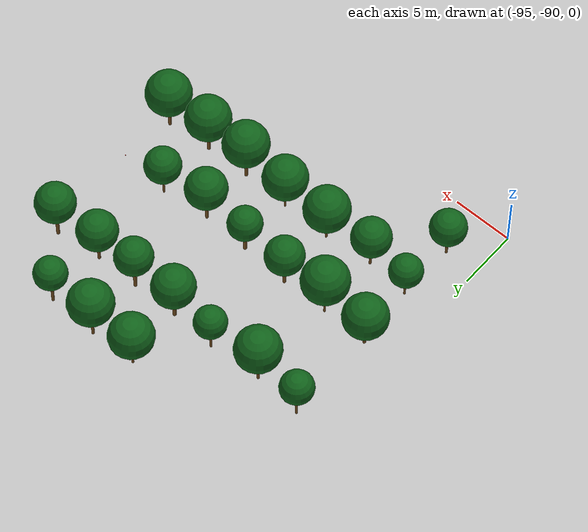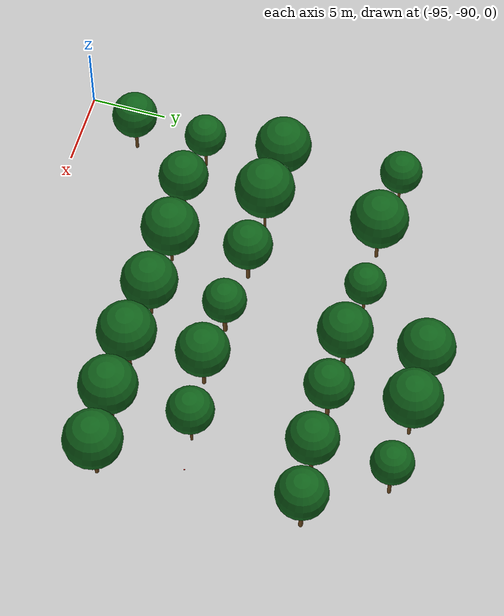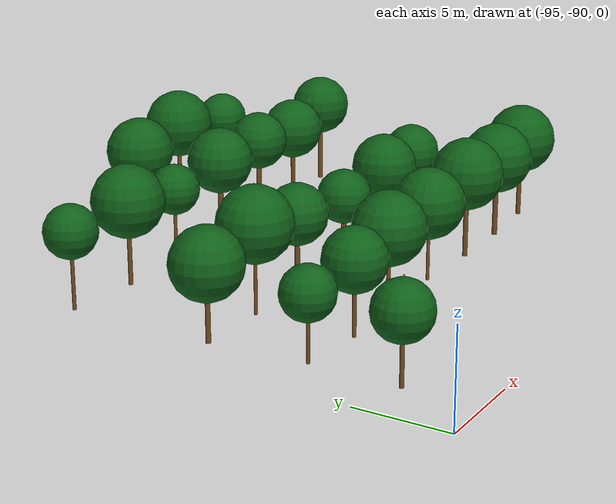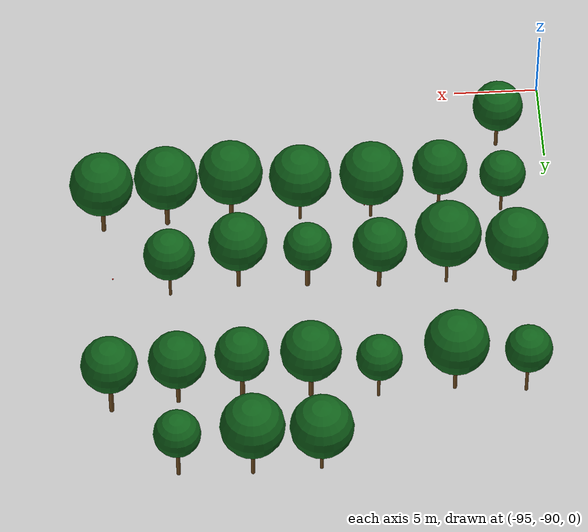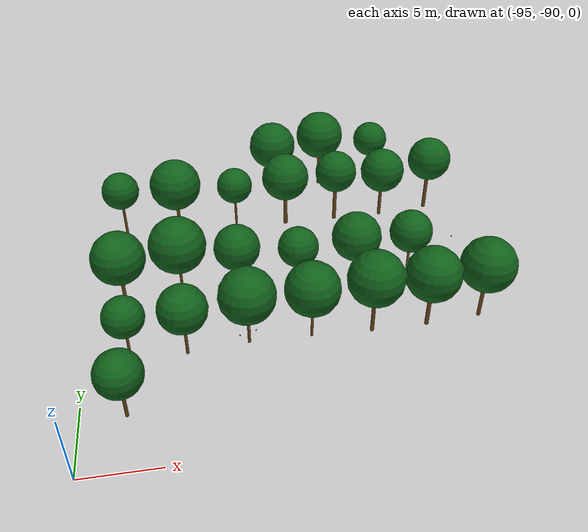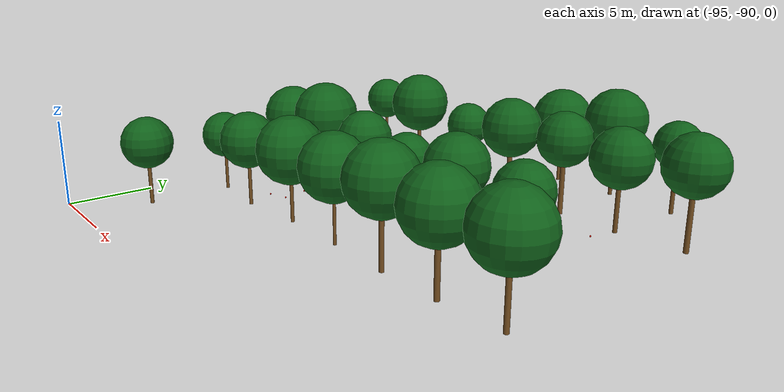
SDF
<sdf version="1.9">
 <world name="cheongsong_orchard">
  <model name="apple_tree_323">
   <static>true</static>
   <pose>-92.17 -86.00 0 0 0 0</pose>
   <link name="link">
    <collision name="trunk_col">
     <pose>0 0 1.11 0 0 0</pose>
     <geometry><cylinder><radius>0.108</radius><length>2.21</length></cylinder></geometry>
    </collision>
    <visual name="trunk_vis">
     <pose>0 0 1.11 0 0 0</pose>
     <geometry><cylinder><radius>0.108</radius><length>2.21</length></cylinder></geometry>
     <material><ambient>0.35 0.22 0.08 1</ambient><diffuse>0.45 0.30 0.12 1</diffuse></material>
    </visual>
    <collision name="canopy_col">
     <pose>0 0 3.71 0 0 0</pose>
     <geometry><sphere><radius>1.50</radius></sphere></geometry>
    </collision>
    <visual name="canopy_vis">
     <pose>0 0 3.71 0 0 0</pose>
     <geometry><sphere><radius>1.50</radius></sphere></geometry>
     <material><ambient>0.04 0.28 0.06 1</ambient><diffuse>0.06 0.38 0.10 1</diffuse></material>
    </visual>
   </link>
  </model>
  <model name="apple_tree_378">
   <static>true</static>
   <pose>-92.06 -81.11 0 0 0 0</pose>
   <link name="link">
    <collision name="trunk_col">
     <pose>0 0 1.06 0 0 0</pose>
     <geometry><cylinder><radius>0.090</radius><length>2.11</length></cylinder></geometry>
    </collision>
    <visual name="trunk_vis">
     <pose>0 0 1.06 0 0 0</pose>
     <geometry><cylinder><radius>0.090</radius><length>2.11</length></cylinder></geometry>
     <material><ambient>0.35 0.22 0.08 1</ambient><diffuse>0.45 0.30 0.12 1</diffuse></material>
    </visual>
    <collision name="canopy_col">
     <pose>0 0 3.48 0 0 0</pose>
     <geometry><sphere><radius>1.37</radius></sphere></geometry>
    </collision>
    <visual name="canopy_vis">
     <pose>0 0 3.48 0 0 0</pose>
     <geometry><sphere><radius>1.37</radius></sphere></geometry>
     <material><ambient>0.04 0.28 0.06 1</ambient><diffuse>0.06 0.38 0.10 1</diffuse></material>
    </visual>
   </link>
  </model>
  <model name="apple_tree_379">
   <static>true</static>
   <pose>-88.37 -81.45 0 0 0 0</pose>
   <link name="link">
    <collision name="trunk_col">
     <pose>0 0 1.15 0 0 0</pose>
     <geometry><cylinder><radius>0.100</radius><length>2.29</length></cylinder></geometry>
    </collision>
    <visual name="trunk_vis">
     <pose>0 0 1.15 0 0 0</pose>
     <geometry><cylinder><radius>0.100</radius><length>2.29</length></cylinder></geometry>
     <material><ambient>0.35 0.22 0.08 1</ambient><diffuse>0.45 0.30 0.12 1</diffuse></material>
    </visual>
    <collision name="canopy_col">
     <pose>0 0 3.92 0 0 0</pose>
     <geometry><sphere><radius>1.63</radius></sphere></geometry>
    </collision>
    <visual name="canopy_vis">
     <pose>0 0 3.92 0 0 0</pose>
     <geometry><sphere><radius>1.63</radius></sphere></geometry>
     <material><ambient>0.04 0.28 0.06 1</ambient><diffuse>0.06 0.38 0.10 1</diffuse></material>
    </visual>
   </link>
  </model>
  <model name="apple_tree_380">
   <static>true</static>
   <pose>-84.30 -81.07 0 0 0 0</pose>
   <link name="link">
    <collision name="trunk_col">
     <pose>0 0 1.12 0 0 0</pose>
     <geometry><cylinder><radius>0.099</radius><length>2.23</length></cylinder></geometry>
    </collision>
    <visual name="trunk_vis">
     <pose>0 0 1.12 0 0 0</pose>
     <geometry><cylinder><radius>0.099</radius><length>2.23</length></cylinder></geometry>
     <material><ambient>0.35 0.22 0.08 1</ambient><diffuse>0.45 0.30 0.12 1</diffuse></material>
    </visual>
    <collision name="canopy_col">
     <pose>0 0 4.12 0 0 0</pose>
     <geometry><sphere><radius>1.89</radius></sphere></geometry>
    </collision>
    <visual name="canopy_vis">
     <pose>0 0 4.12 0 0 0</pose>
     <geometry><sphere><radius>1.89</radius></sphere></geometry>
     <material><ambient>0.04 0.28 0.06 1</ambient><diffuse>0.06 0.38 0.10 1</diffuse></material>
    </visual>
   </link>
  </model>
  <model name="apple_tree_381">
   <static>true</static>
   <pose>-80.11 -81.11 0 0 0 0</pose>
   <link name="link">
    <collision name="trunk_col">
     <pose>0 0 1.16 0 0 0</pose>
     <geometry><cylinder><radius>0.085</radius><length>2.32</length></cylinder></geometry>
    </collision>
    <visual name="trunk_vis">
     <pose>0 0 1.16 0 0 0</pose>
     <geometry><cylinder><radius>0.085</radius><length>2.32</length></cylinder></geometry>
     <material><ambient>0.35 0.22 0.08 1</ambient><diffuse>0.45 0.30 0.12 1</diffuse></material>
    </visual>
    <collision name="canopy_col">
     <pose>0 0 4.15 0 0 0</pose>
     <geometry><sphere><radius>1.84</radius></sphere></geometry>
    </collision>
    <visual name="canopy_vis">
     <pose>0 0 4.15 0 0 0</pose>
     <geometry><sphere><radius>1.84</radius></sphere></geometry>
     <material><ambient>0.04 0.28 0.06 1</ambient><diffuse>0.06 0.38 0.10 1</diffuse></material>
    </visual>
   </link>
  </model>
  <model name="apple_tree_382">
   <static>true</static>
   <pose>-76.03 -81.25 0 0 0 0</pose>
   <link name="link">
    <collision name="trunk_col">
     <pose>0 0 1.34 0 0 0</pose>
     <geometry><cylinder><radius>0.129</radius><length>2.68</length></cylinder></geometry>
    </collision>
    <visual name="trunk_vis">
     <pose>0 0 1.34 0 0 0</pose>
     <geometry><cylinder><radius>0.129</radius><length>2.68</length></cylinder></geometry>
     <material><ambient>0.35 0.22 0.08 1</ambient><diffuse>0.45 0.30 0.12 1</diffuse></material>
    </visual>
    <collision name="canopy_col">
     <pose>0 0 4.58 0 0 0</pose>
     <geometry><sphere><radius>1.90</radius></sphere></geometry>
    </collision>
    <visual name="canopy_vis">
     <pose>0 0 4.58 0 0 0</pose>
     <geometry><sphere><radius>1.90</radius></sphere></geometry>
     <material><ambient>0.04 0.28 0.06 1</ambient><diffuse>0.06 0.38 0.10 1</diffuse></material>
    </visual>
   </link>
  </model>
  <model name="apple_tree_383">
   <static>true</static>
   <pose>-72.22 -81.20 0 0 0 0</pose>
   <link name="link">
    <collision name="trunk_col">
     <pose>0 0 1.26 0 0 0</pose>
     <geometry><cylinder><radius>0.141</radius><length>2.52</length></cylinder></geometry>
    </collision>
    <visual name="trunk_vis">
     <pose>0 0 1.26 0 0 0</pose>
     <geometry><cylinder><radius>0.141</radius><length>2.52</length></cylinder></geometry>
     <material><ambient>0.35 0.22 0.08 1</ambient><diffuse>0.45 0.30 0.12 1</diffuse></material>
    </visual>
    <collision name="canopy_col">
     <pose>0 0 4.40 0 0 0</pose>
     <geometry><sphere><radius>1.88</radius></sphere></geometry>
    </collision>
    <visual name="canopy_vis">
     <pose>0 0 4.40 0 0 0</pose>
     <geometry><sphere><radius>1.88</radius></sphere></geometry>
     <material><ambient>0.04 0.28 0.06 1</ambient><diffuse>0.06 0.38 0.10 1</diffuse></material>
    </visual>
   </link>
  </model>
  <model name="apple_tree_384">
   <static>true</static>
   <pose>-68.43 -80.91 0 0 0 0</pose>
   <link name="link">
    <collision name="trunk_col">
     <pose>0 0 1.28 0 0 0</pose>
     <geometry><cylinder><radius>0.129</radius><length>2.57</length></cylinder></geometry>
    </collision>
    <visual name="trunk_vis">
     <pose>0 0 1.28 0 0 0</pose>
     <geometry><cylinder><radius>0.129</radius><length>2.57</length></cylinder></geometry>
     <material><ambient>0.35 0.22 0.08 1</ambient><diffuse>0.45 0.30 0.12 1</diffuse></material>
    </visual>
    <collision name="canopy_col">
     <pose>0 0 4.45 0 0 0</pose>
     <geometry><sphere><radius>1.88</radius></sphere></geometry>
    </collision>
    <visual name="canopy_vis">
     <pose>0 0 4.45 0 0 0</pose>
     <geometry><sphere><radius>1.88</radius></sphere></geometry>
     <material><ambient>0.04 0.28 0.06 1</ambient><diffuse>0.06 0.38 0.10 1</diffuse></material>
    </visual>
   </link>
  </model>
  <model name="apple_tree_434">
   <static>true</static>
   <pose>-92.44 -75.89 0 0 0 0</pose>
   <link name="link">
    <collision name="trunk_col">
     <pose>0 0 1.07 0 0 0</pose>
     <geometry><cylinder><radius>0.125</radius><length>2.14</length></cylinder></geometry>
    </collision>
    <visual name="trunk_vis">
     <pose>0 0 1.07 0 0 0</pose>
     <geometry><cylinder><radius>0.125</radius><length>2.14</length></cylinder></geometry>
     <material><ambient>0.35 0.22 0.08 1</ambient><diffuse>0.45 0.30 0.12 1</diffuse></material>
    </visual>
    <collision name="canopy_col">
     <pose>0 0 3.99 0 0 0</pose>
     <geometry><sphere><radius>1.85</radius></sphere></geometry>
    </collision>
    <visual name="canopy_vis">
     <pose>0 0 3.99 0 0 0</pose>
     <geometry><sphere><radius>1.85</radius></sphere></geometry>
     <material><ambient>0.04 0.28 0.06 1</ambient><diffuse>0.06 0.38 0.10 1</diffuse></material>
    </visual>
   </link>
  </model>
  <model name="apple_tree_435">
   <static>true</static>
   <pose>-88.43 -75.98 0 0 0 0</pose>
   <link name="link">
    <collision name="trunk_col">
     <pose>0 0 1.37 0 0 0</pose>
     <geometry><cylinder><radius>0.089</radius><length>2.74</length></cylinder></geometry>
    </collision>
    <visual name="trunk_vis">
     <pose>0 0 1.37 0 0 0</pose>
     <geometry><cylinder><radius>0.089</radius><length>2.74</length></cylinder></geometry>
     <material><ambient>0.35 0.22 0.08 1</ambient><diffuse>0.45 0.30 0.12 1</diffuse></material>
    </visual>
    <collision name="canopy_col">
     <pose>0 0 4.69 0 0 0</pose>
     <geometry><sphere><radius>1.95</radius></sphere></geometry>
    </collision>
    <visual name="canopy_vis">
     <pose>0 0 4.69 0 0 0</pose>
     <geometry><sphere><radius>1.95</radius></sphere></geometry>
     <material><ambient>0.04 0.28 0.06 1</ambient><diffuse>0.06 0.38 0.10 1</diffuse></material>
    </visual>
   </link>
  </model>
  <model name="apple_tree_436">
   <static>true</static>
   <pose>-84.46 -75.94 0 0 0 0</pose>
   <link name="link">
    <collision name="trunk_col">
     <pose>0 0 1.19 0 0 0</pose>
     <geometry><cylinder><radius>0.131</radius><length>2.37</length></cylinder></geometry>
    </collision>
    <visual name="trunk_vis">
     <pose>0 0 1.19 0 0 0</pose>
     <geometry><cylinder><radius>0.131</radius><length>2.37</length></cylinder></geometry>
     <material><ambient>0.35 0.22 0.08 1</ambient><diffuse>0.45 0.30 0.12 1</diffuse></material>
    </visual>
    <collision name="canopy_col">
     <pose>0 0 3.97 0 0 0</pose>
     <geometry><sphere><radius>1.60</radius></sphere></geometry>
    </collision>
    <visual name="canopy_vis">
     <pose>0 0 3.97 0 0 0</pose>
     <geometry><sphere><radius>1.60</radius></sphere></geometry>
     <material><ambient>0.04 0.28 0.06 1</ambient><diffuse>0.06 0.38 0.10 1</diffuse></material>
    </visual>
   </link>
  </model>
  <model name="apple_tree_437">
   <static>true</static>
   <pose>-80.26 -76.23 0 0 0 0</pose>
   <link name="link">
    <collision name="trunk_col">
     <pose>0 0 1.15 0 0 0</pose>
     <geometry><cylinder><radius>0.144</radius><length>2.30</length></cylinder></geometry>
    </collision>
    <visual name="trunk_vis">
     <pose>0 0 1.15 0 0 0</pose>
     <geometry><cylinder><radius>0.144</radius><length>2.30</length></cylinder></geometry>
     <material><ambient>0.35 0.22 0.08 1</ambient><diffuse>0.45 0.30 0.12 1</diffuse></material>
    </visual>
    <collision name="canopy_col">
     <pose>0 0 3.72 0 0 0</pose>
     <geometry><sphere><radius>1.42</radius></sphere></geometry>
    </collision>
    <visual name="canopy_vis">
     <pose>0 0 3.72 0 0 0</pose>
     <geometry><sphere><radius>1.42</radius></sphere></geometry>
     <material><ambient>0.04 0.28 0.06 1</ambient><diffuse>0.06 0.38 0.10 1</diffuse></material>
    </visual>
   </link>
  </model>
  <model name="apple_tree_438">
   <static>true</static>
   <pose>-76.22 -76.40 0 0 0 0</pose>
   <link name="link">
    <collision name="trunk_col">
     <pose>0 0 1.27 0 0 0</pose>
     <geometry><cylinder><radius>0.123</radius><length>2.55</length></cylinder></geometry>
    </collision>
    <visual name="trunk_vis">
     <pose>0 0 1.27 0 0 0</pose>
     <geometry><cylinder><radius>0.123</radius><length>2.55</length></cylinder></geometry>
     <material><ambient>0.35 0.22 0.08 1</ambient><diffuse>0.45 0.30 0.12 1</diffuse></material>
    </visual>
    <collision name="canopy_col">
     <pose>0 0 4.27 0 0 0</pose>
     <geometry><sphere><radius>1.72</radius></sphere></geometry>
    </collision>
    <visual name="canopy_vis">
     <pose>0 0 4.27 0 0 0</pose>
     <geometry><sphere><radius>1.72</radius></sphere></geometry>
     <material><ambient>0.04 0.28 0.06 1</ambient><diffuse>0.06 0.38 0.10 1</diffuse></material>
    </visual>
   </link>
  </model>
  <model name="apple_tree_439">
   <static>true</static>
   <pose>-72.19 -75.96 0 0 0 0</pose>
   <link name="link">
    <collision name="trunk_col">
     <pose>0 0 1.21 0 0 0</pose>
     <geometry><cylinder><radius>0.086</radius><length>2.42</length></cylinder></geometry>
    </collision>
    <visual name="trunk_vis">
     <pose>0 0 1.21 0 0 0</pose>
     <geometry><cylinder><radius>0.086</radius><length>2.42</length></cylinder></geometry>
     <material><ambient>0.35 0.22 0.08 1</ambient><diffuse>0.45 0.30 0.12 1</diffuse></material>
    </visual>
    <collision name="canopy_col">
     <pose>0 0 3.92 0 0 0</pose>
     <geometry><sphere><radius>1.51</radius></sphere></geometry>
    </collision>
    <visual name="canopy_vis">
     <pose>0 0 3.92 0 0 0</pose>
     <geometry><sphere><radius>1.51</radius></sphere></geometry>
     <material><ambient>0.04 0.28 0.06 1</ambient><diffuse>0.06 0.38 0.10 1</diffuse></material>
    </visual>
   </link>
  </model>
  <model name="apple_tree_492">
   <static>true</static>
   <pose>-92.46 -67.98 0 0 0 0</pose>
   <link name="link">
    <collision name="trunk_col">
     <pose>0 0 1.36 0 0 0</pose>
     <geometry><cylinder><radius>0.095</radius><length>2.71</length></cylinder></geometry>
    </collision>
    <visual name="trunk_vis">
     <pose>0 0 1.36 0 0 0</pose>
     <geometry><cylinder><radius>0.095</radius><length>2.71</length></cylinder></geometry>
     <material><ambient>0.35 0.22 0.08 1</ambient><diffuse>0.45 0.30 0.12 1</diffuse></material>
    </visual>
    <collision name="canopy_col">
     <pose>0 0 4.09 0 0 0</pose>
     <geometry><sphere><radius>1.38</radius></sphere></geometry>
    </collision>
    <visual name="canopy_vis">
     <pose>0 0 4.09 0 0 0</pose>
     <geometry><sphere><radius>1.38</radius></sphere></geometry>
     <material><ambient>0.04 0.28 0.06 1</ambient><diffuse>0.06 0.38 0.10 1</diffuse></material>
    </visual>
   </link>
  </model>
  <model name="apple_tree_493">
   <static>true</static>
   <pose>-88.35 -68.37 0 0 0 0</pose>
   <link name="link">
    <collision name="trunk_col">
     <pose>0 0 1.29 0 0 0</pose>
     <geometry><cylinder><radius>0.116</radius><length>2.59</length></cylinder></geometry>
    </collision>
    <visual name="trunk_vis">
     <pose>0 0 1.29 0 0 0</pose>
     <geometry><cylinder><radius>0.116</radius><length>2.59</length></cylinder></geometry>
     <material><ambient>0.35 0.22 0.08 1</ambient><diffuse>0.45 0.30 0.12 1</diffuse></material>
    </visual>
    <collision name="canopy_col">
     <pose>0 0 4.48 0 0 0</pose>
     <geometry><sphere><radius>1.89</radius></sphere></geometry>
    </collision>
    <visual name="canopy_vis">
     <pose>0 0 4.48 0 0 0</pose>
     <geometry><sphere><radius>1.89</radius></sphere></geometry>
     <material><ambient>0.04 0.28 0.06 1</ambient><diffuse>0.06 0.38 0.10 1</diffuse></material>
    </visual>
   </link>
  </model>
  <model name="apple_tree_494">
   <static>true</static>
   <pose>-83.91 -68.08 0 0 0 0</pose>
   <link name="link">
    <collision name="trunk_col">
     <pose>0 0 1.21 0 0 0</pose>
     <geometry><cylinder><radius>0.089</radius><length>2.41</length></cylinder></geometry>
    </collision>
    <visual name="trunk_vis">
     <pose>0 0 1.21 0 0 0</pose>
     <geometry><cylinder><radius>0.089</radius><length>2.41</length></cylinder></geometry>
     <material><ambient>0.35 0.22 0.08 1</ambient><diffuse>0.45 0.30 0.12 1</diffuse></material>
    </visual>
    <collision name="canopy_col">
     <pose>0 0 3.75 0 0 0</pose>
     <geometry><sphere><radius>1.34</radius></sphere></geometry>
    </collision>
    <visual name="canopy_vis">
     <pose>0 0 3.75 0 0 0</pose>
     <geometry><sphere><radius>1.34</radius></sphere></geometry>
     <material><ambient>0.04 0.28 0.06 1</ambient><diffuse>0.06 0.38 0.10 1</diffuse></material>
    </visual>
   </link>
  </model>
  <model name="apple_tree_495">
   <static>true</static>
   <pose>-80.01 -68.36 0 0 0 0</pose>
   <link name="link">
    <collision name="trunk_col">
     <pose>0 0 1.27 0 0 0</pose>
     <geometry><cylinder><radius>0.146</radius><length>2.54</length></cylinder></geometry>
    </collision>
    <visual name="trunk_vis">
     <pose>0 0 1.27 0 0 0</pose>
     <geometry><cylinder><radius>0.146</radius><length>2.54</length></cylinder></geometry>
     <material><ambient>0.35 0.22 0.08 1</ambient><diffuse>0.45 0.30 0.12 1</diffuse></material>
    </visual>
    <collision name="canopy_col">
     <pose>0 0 4.31 0 0 0</pose>
     <geometry><sphere><radius>1.77</radius></sphere></geometry>
    </collision>
    <visual name="canopy_vis">
     <pose>0 0 4.31 0 0 0</pose>
     <geometry><sphere><radius>1.77</radius></sphere></geometry>
     <material><ambient>0.04 0.28 0.06 1</ambient><diffuse>0.06 0.38 0.10 1</diffuse></material>
    </visual>
   </link>
  </model>
  <model name="apple_tree_496">
   <static>true</static>
   <pose>-76.06 -68.32 0 0 0 0</pose>
   <link name="link">
    <collision name="trunk_col">
     <pose>0 0 1.41 0 0 0</pose>
     <geometry><cylinder><radius>0.140</radius><length>2.82</length></cylinder></geometry>
    </collision>
    <visual name="trunk_vis">
     <pose>0 0 1.41 0 0 0</pose>
     <geometry><cylinder><radius>0.140</radius><length>2.82</length></cylinder></geometry>
     <material><ambient>0.35 0.22 0.08 1</ambient><diffuse>0.45 0.30 0.12 1</diffuse></material>
    </visual>
    <collision name="canopy_col">
     <pose>0 0 4.39 0 0 0</pose>
     <geometry><sphere><radius>1.57</radius></sphere></geometry>
    </collision>
    <visual name="canopy_vis">
     <pose>0 0 4.39 0 0 0</pose>
     <geometry><sphere><radius>1.57</radius></sphere></geometry>
     <material><ambient>0.04 0.28 0.06 1</ambient><diffuse>0.06 0.38 0.10 1</diffuse></material>
    </visual>
   </link>
  </model>
  <model name="apple_tree_497">
   <static>true</static>
   <pose>-72.36 -68.31 0 0 0 0</pose>
   <link name="link">
    <collision name="trunk_col">
     <pose>0 0 1.23 0 0 0</pose>
     <geometry><cylinder><radius>0.124</radius><length>2.46</length></cylinder></geometry>
    </collision>
    <visual name="trunk_vis">
     <pose>0 0 1.23 0 0 0</pose>
     <geometry><cylinder><radius>0.124</radius><length>2.46</length></cylinder></geometry>
     <material><ambient>0.35 0.22 0.08 1</ambient><diffuse>0.45 0.30 0.12 1</diffuse></material>
    </visual>
    <collision name="canopy_col">
     <pose>0 0 4.13 0 0 0</pose>
     <geometry><sphere><radius>1.67</radius></sphere></geometry>
    </collision>
    <visual name="canopy_vis">
     <pose>0 0 4.13 0 0 0</pose>
     <geometry><sphere><radius>1.67</radius></sphere></geometry>
     <material><ambient>0.04 0.28 0.06 1</ambient><diffuse>0.06 0.38 0.10 1</diffuse></material>
    </visual>
   </link>
  </model>
  <model name="apple_tree_498">
   <static>true</static>
   <pose>-68.49 -67.89 0 0 0 0</pose>
   <link name="link">
    <collision name="trunk_col">
     <pose>0 0 1.45 0 0 0</pose>
     <geometry><cylinder><radius>0.139</radius><length>2.89</length></cylinder></geometry>
    </collision>
    <visual name="trunk_vis">
     <pose>0 0 1.45 0 0 0</pose>
     <geometry><cylinder><radius>0.139</radius><length>2.89</length></cylinder></geometry>
     <material><ambient>0.35 0.22 0.08 1</ambient><diffuse>0.45 0.30 0.12 1</diffuse></material>
    </visual>
    <collision name="canopy_col">
     <pose>0 0 4.54 0 0 0</pose>
     <geometry><sphere><radius>1.65</radius></sphere></geometry>
    </collision>
    <visual name="canopy_vis">
     <pose>0 0 4.54 0 0 0</pose>
     <geometry><sphere><radius>1.65</radius></sphere></geometry>
     <material><ambient>0.04 0.28 0.06 1</ambient><diffuse>0.06 0.38 0.10 1</diffuse></material>
    </visual>
   </link>
  </model>
  <model name="apple_tree_554">
   <static>true</static>
   <pose>-80.34 -63.25 0 0 0 0</pose>
   <link name="link">
    <collision name="trunk_col">
     <pose>0 0 1.14 0 0 0</pose>
     <geometry><cylinder><radius>0.101</radius><length>2.28</length></cylinder></geometry>
    </collision>
    <visual name="trunk_vis">
     <pose>0 0 1.14 0 0 0</pose>
     <geometry><cylinder><radius>0.101</radius><length>2.28</length></cylinder></geometry>
     <material><ambient>0.35 0.22 0.08 1</ambient><diffuse>0.45 0.30 0.12 1</diffuse></material>
    </visual>
    <collision name="canopy_col">
     <pose>0 0 4.13 0 0 0</pose>
     <geometry><sphere><radius>1.84</radius></sphere></geometry>
    </collision>
    <visual name="canopy_vis">
     <pose>0 0 4.13 0 0 0</pose>
     <geometry><sphere><radius>1.84</radius></sphere></geometry>
     <material><ambient>0.04 0.28 0.06 1</ambient><diffuse>0.06 0.38 0.10 1</diffuse></material>
    </visual>
   </link>
  </model>
  <model name="apple_tree_555">
   <static>true</static>
   <pose>-76.41 -63.13 0 0 0 0</pose>
   <link name="link">
    <collision name="trunk_col">
     <pose>0 0 1.41 0 0 0</pose>
     <geometry><cylinder><radius>0.116</radius><length>2.81</length></cylinder></geometry>
    </collision>
    <visual name="trunk_vis">
     <pose>0 0 1.41 0 0 0</pose>
     <geometry><cylinder><radius>0.116</radius><length>2.81</length></cylinder></geometry>
     <material><ambient>0.35 0.22 0.08 1</ambient><diffuse>0.45 0.30 0.12 1</diffuse></material>
    </visual>
    <collision name="canopy_col">
     <pose>0 0 4.69 0 0 0</pose>
     <geometry><sphere><radius>1.87</radius></sphere></geometry>
    </collision>
    <visual name="canopy_vis">
     <pose>0 0 4.69 0 0 0</pose>
     <geometry><sphere><radius>1.87</radius></sphere></geometry>
     <material><ambient>0.04 0.28 0.06 1</ambient><diffuse>0.06 0.38 0.10 1</diffuse></material>
    </visual>
   </link>
  </model>
  <model name="apple_tree_556">
   <static>true</static>
   <pose>-72.16 -63.30 0 0 0 0</pose>
   <link name="link">
    <collision name="trunk_col">
     <pose>0 0 1.33 0 0 0</pose>
     <geometry><cylinder><radius>0.119</radius><length>2.67</length></cylinder></geometry>
    </collision>
    <visual name="trunk_vis">
     <pose>0 0 1.33 0 0 0</pose>
     <geometry><cylinder><radius>0.119</radius><length>2.67</length></cylinder></geometry>
     <material><ambient>0.35 0.22 0.08 1</ambient><diffuse>0.45 0.30 0.12 1</diffuse></material>
    </visual>
    <collision name="canopy_col">
     <pose>0 0 4.04 0 0 0</pose>
     <geometry><sphere><radius>1.37</radius></sphere></geometry>
    </collision>
    <visual name="canopy_vis">
     <pose>0 0 4.04 0 0 0</pose>
     <geometry><sphere><radius>1.37</radius></sphere></geometry>
     <material><ambient>0.04 0.28 0.06 1</ambient><diffuse>0.06 0.38 0.10 1</diffuse></material>
    </visual>
   </link>
  </model>
  <model name="apple_380_0">
   <static>true</static>
   <pose>-84.11 -81.49 2.47 0 0 0</pose>
   <link name="link">
    <visual name="visual">
     <geometry><sphere><radius>0.04</radius></sphere></geometry>
     <material><ambient>0.7 0.05 0.02 1</ambient><diffuse>0.9 0.10 0.05 1</diffuse></material>
    </visual>
   </link>
  </model>
  <model name="apple_380_1">
   <static>true</static>
   <pose>-84.61 -80.87 1.84 0 0 0</pose>
   <link name="link">
    <visual name="visual">
     <geometry><sphere><radius>0.04</radius></sphere></geometry>
     <material><ambient>0.7 0.05 0.02 1</ambient><diffuse>0.9 0.10 0.05 1</diffuse></material>
    </visual>
   </link>
  </model>
  <model name="apple_380_2">
   <static>true</static>
   <pose>-84.94 -82.02 1.65 0 0 0</pose>
   <link name="link">
    <visual name="visual">
     <geometry><sphere><radius>0.04</radius></sphere></geometry>
     <material><ambient>0.7 0.05 0.02 1</ambient><diffuse>0.9 0.10 0.05 1</diffuse></material>
    </visual>
   </link>
  </model>
  <model name="apple_380_3">
   <static>true</static>
   <pose>-83.88 -80.52 1.80 0 0 0</pose>
   <link name="link">
    <visual name="visual">
     <geometry><sphere><radius>0.04</radius></sphere></geometry>
     <material><ambient>0.7 0.05 0.02 1</ambient><diffuse>0.9 0.10 0.05 1</diffuse></material>
    </visual>
   </link>
  </model>
  <model name="apple_380_4">
   <static>true</static>
   <pose>-83.87 -81.71 1.67 0 0 0</pose>
   <link name="link">
    <visual name="visual">
     <geometry><sphere><radius>0.04</radius></sphere></geometry>
     <material><ambient>0.7 0.05 0.02 1</ambient><diffuse>0.9 0.10 0.05 1</diffuse></material>
    </visual>
   </link>
  </model>
  <model name="apple_440_1">
   <static>true</static>
   <pose>-68.87 -75.33 2.61 0 0 0</pose>
   <link name="link">
    <visual name="visual">
     <geometry><sphere><radius>0.04</radius></sphere></geometry>
     <material><ambient>0.7 0.05 0.02 1</ambient><diffuse>0.9 0.10 0.05 1</diffuse></material>
    </visual>
   </link>
  </model>
 </world>
</sdf>
